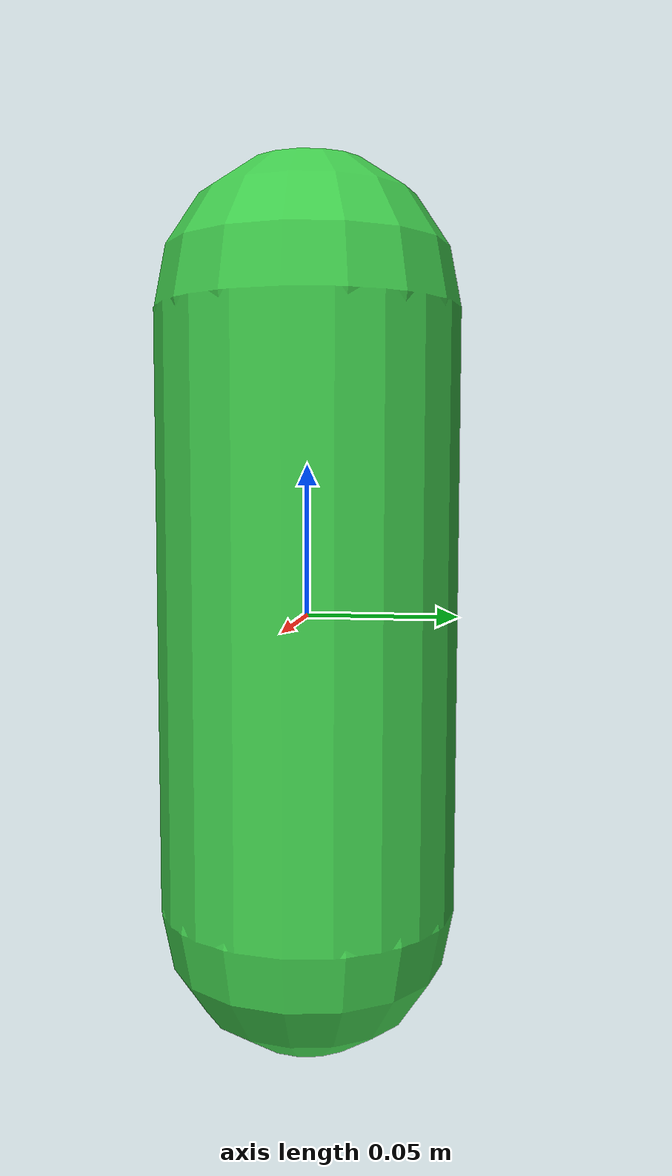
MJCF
<mujoco model="obstacle_capsule">
  <worldbody>
    <body name="obs" pos="0 0 0">
      <!-- Small capsule: radius 0.05, half-length 0.1 (total ~30 cm) -->
      <geom name="capsule_geom" type="capsule" size="0.05 0.1"
            rgba="0.25 0.80 0.30 1" contype="1" conaffinity="1"/>
    </body>
  </worldbody>
</mujoco>
